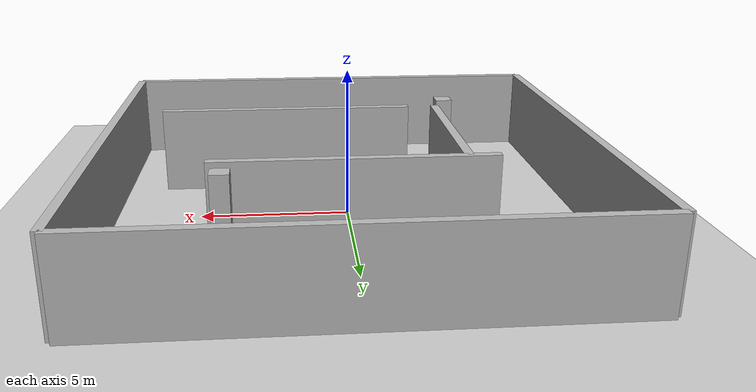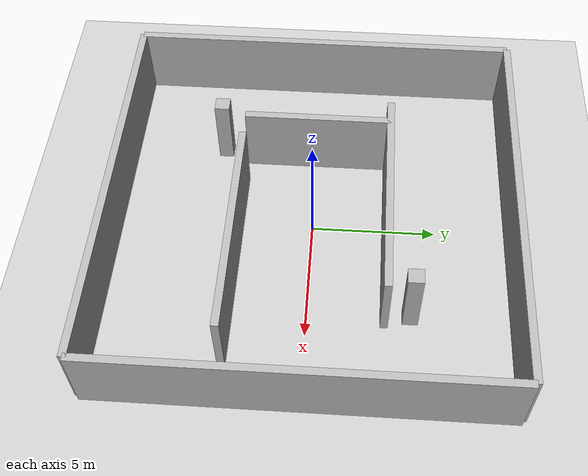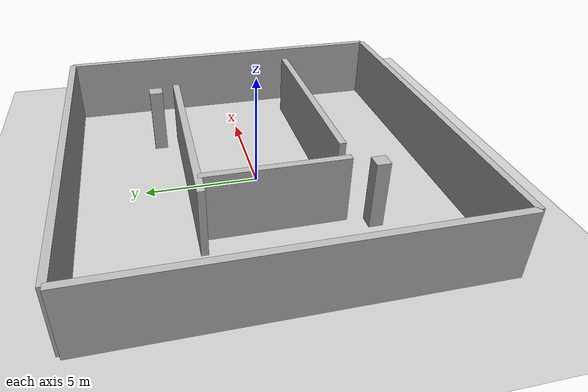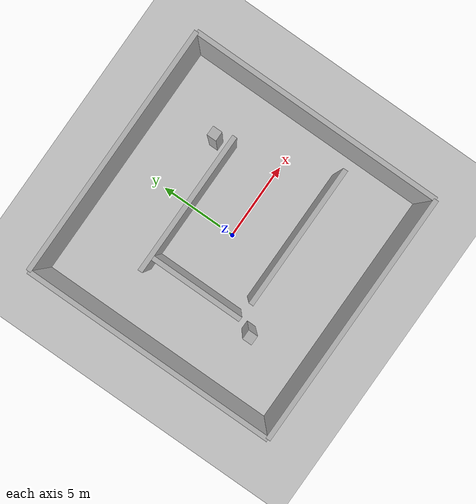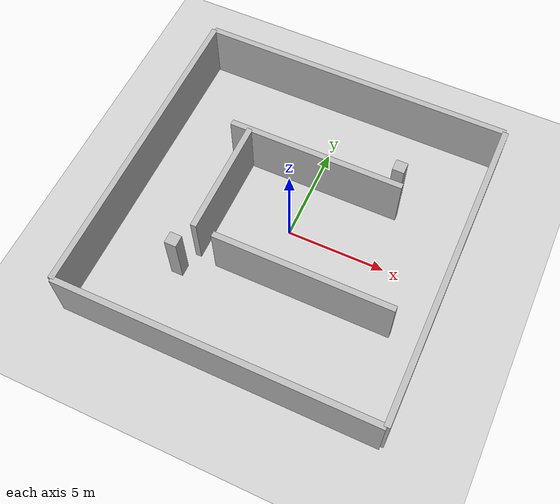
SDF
<?xml version="1.0"?>
<!-- 轻量 box-图元场景:仅用 box 基本体(无网格文件),WSLg 软件渲染(llvmpipe)可稳定加载。
     给无人机一组墙/障碍构成可探索的走廊+房间,用于 GBPlanner 探索演示。 -->
<sdf version="1.6">
  <world name="light_boxes">
    <!-- RotorS 传感器插件(里程计等)发的是 Gazebo 内部消息,必须由该世界级插件转成 ROS 话题;
         官方 7 个世界均带此行,缺它则 /ground_truth/odometry 无发布者。 -->
    <plugin name="ros_interface_plugin" filename="librotors_gazebo_ros_interface_plugin.so"/>
    <include><uri>model://sun</uri></include>
    <include><uri>model://ground_plane</uri></include>

    <physics type="ode">
      <max_step_size>0.004</max_step_size>
      <real_time_update_rate>250</real_time_update_rate>
    </physics>

    <!-- 用一个 model 装若干静态 box 墙,组成 井字/走廊 结构 -->
    <model name="box_maze">
      <static>true</static>

      <!-- 外围四面墙(围出 ~16x16 空间,墙高3) -->
      <link name="w_n"><pose>0 8 1.5 0 0 0</pose>
        <collision name="c"><geometry><box><size>16 0.3 3</size></box></geometry></collision>
        <visual name="v"><geometry><box><size>16 0.3 3</size></box></geometry></visual></link>
      <link name="w_s"><pose>0 -8 1.5 0 0 0</pose>
        <collision name="c"><geometry><box><size>16 0.3 3</size></box></geometry></collision>
        <visual name="v"><geometry><box><size>16 0.3 3</size></box></geometry></visual></link>
      <link name="w_e"><pose>8 0 1.5 0 0 0</pose>
        <collision name="c"><geometry><box><size>0.3 16 3</size></box></geometry></collision>
        <visual name="v"><geometry><box><size>0.3 16 3</size></box></geometry></visual></link>
      <link name="w_w"><pose>-8 0 1.5 0 0 0</pose>
        <collision name="c"><geometry><box><size>0.3 16 3</size></box></geometry></collision>
        <visual name="v"><geometry><box><size>0.3 16 3</size></box></geometry></visual></link>

      <!-- 内部隔墙,留缺口形成走廊,制造"未知区域"供探索 -->
      <link name="i1"><pose>0 3 1.5 0 0 0</pose>
        <collision name="c"><geometry><box><size>9 0.3 3</size></box></geometry></collision>
        <visual name="v"><geometry><box><size>9 0.3 3</size></box></geometry></visual></link>
      <link name="i2"><pose>2 -3 1.5 0 0 0</pose>
        <collision name="c"><geometry><box><size>9 0.3 3</size></box></geometry></collision>
        <visual name="v"><geometry><box><size>9 0.3 3</size></box></geometry></visual></link>
      <link name="i3"><pose>-3.5 0 1.5 0 0 0</pose>
        <collision name="c"><geometry><box><size>0.3 6 3</size></box></geometry></collision>
        <visual name="v"><geometry><box><size>0.3 6 3</size></box></geometry></visual></link>

      <!-- 几根柱子当障碍 -->
      <link name="p1"><pose>4 4 1.5 0 0 0</pose>
        <collision name="c"><geometry><box><size>0.6 0.6 3</size></box></geometry></collision>
        <visual name="v"><geometry><box><size>0.6 0.6 3</size></box></geometry></visual></link>
      <link name="p2"><pose>-4 -4 1.5 0 0 0</pose>
        <collision name="c"><geometry><box><size>0.6 0.6 3</size></box></geometry></collision>
        <visual name="v"><geometry><box><size>0.6 0.6 3</size></box></geometry></visual></link>
    </model>
  </world>
</sdf>
